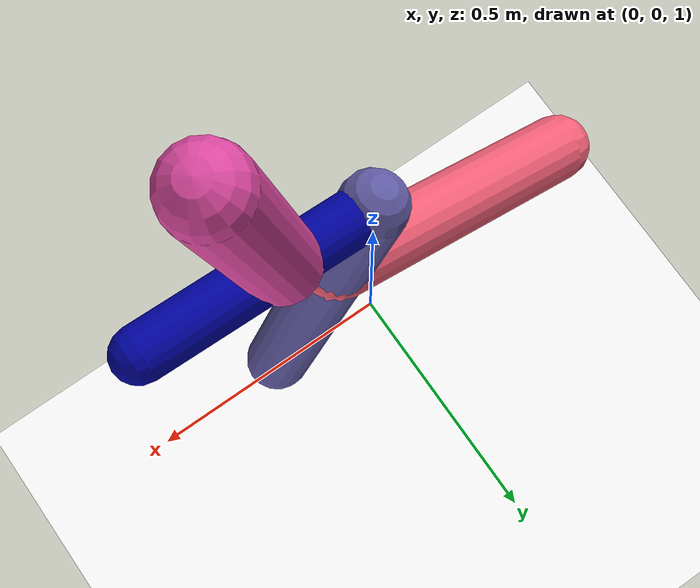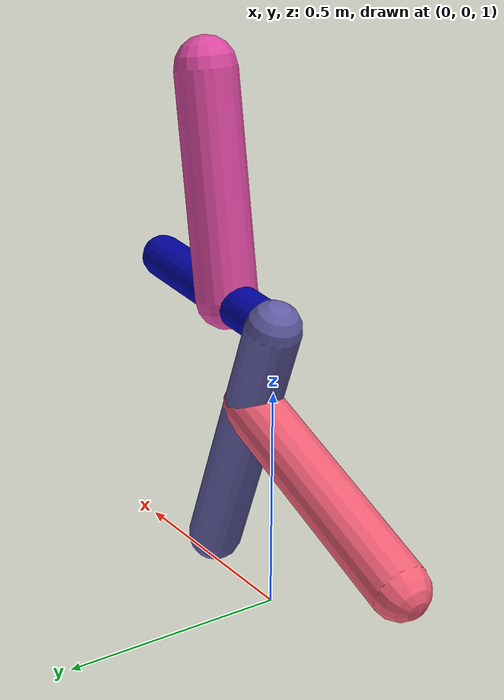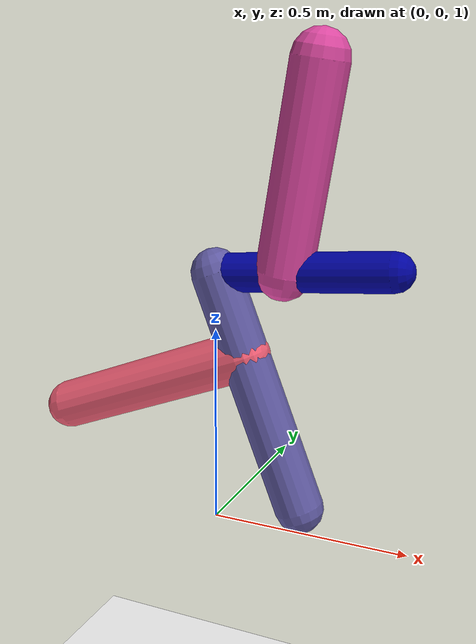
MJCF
<mujoco model="morphology">
    <option timestep="0.01" />
    <custom>
        <!-- brax custom params -->
        <numeric data="1000" name="constraint_limit_stiffness" />
        <numeric data="4000" name="constraint_stiffness" />
        <numeric data="10" name="constraint_ang_damping" />
        <numeric data="20" name="constraint_vel_damping" />
        <numeric data="0.5" name="joint_scale_pos" />
        <numeric data="0.2" name="joint_scale_ang" />
        <numeric data="0.0" name="ang_damping" />
        <numeric data="1" name="spring_mass_scale" />
        <numeric data="1" name="spring_inertia_scale" />
        <numeric data="15" name="solver_maxls" />
    </custom>
    <default>
        <default class="/" />
        <default class="0/" />
        <default class="0/1/" />
        <default class="0/2/" />
        <default class="0/2/3/" />
        <default class="0/2/4/" />
        <default class="0/2/4/5/" />
        <default class="0/2/4/5/6/" />
        <default class="0/2/4/5/7/" />
        <default class="0/2/4/5/7/8/" />
        <default class="0/2/4/5/7/8/9/" />
        <default class="0/2/4/5/7/8/9/10/" />
    </default>
    <asset>
        <texture name="texplane" type="2d" builtin="checker"
            rgb1="0.10000000000000001 0.20000000000000001 0.29999999999999999"
            rgb2="0.20000000000000001 0.29999999999999999 0.40000000000000002" width="300"
            height="300" />
        <material name="MatPlane" class="/" texture="texplane" texrepeat="20 20" specular="1.0"
            shininess="1.0" reflectance="0.5" />
    </asset>
    <worldbody>
        <light name="//unnamed_light_0" class="/" directional="true" pos="0 0 1.5" dir="0 0 -1.3"
            cutoff="100.0" exponent="1.0" diffuse="1 1 1"
            specular="0.10000000000000001 0.10000000000000001 0.10000000000000001" />
        <geom name="ground" class="/" type="plane" size="15 15 0.5" material="MatPlane"
            rgba="1 1 1 1" />
        <site name="body" class="/"
            size="9.9999999999999995e-07 9.9999999999999995e-07 9.9999999999999995e-07"
            pos="0 0 1.6446825361251831" />
        <body pos="0 0 1.6446825361251831" name="0/">
            <joint name="0/rootx/" class="/" type="slide" axis="1 0 0" stiffness="0.0"
                armature="0.0" damping="0.0" />
            <joint name="0/rootz/" class="/" type="slide" axis="0 0 1" stiffness="0.0"
                armature="0.0" damping="0.0" />
            <joint name="0/rooty/" class="/" type="hinge" axis="0 1 0" stiffness="0.0"
                armature="0.0" damping="0.0" />
            <geom name="0/geom" class="0/" type="capsule" contype="1" conaffinity="1" condim="3"
                size="0.048470334428519793"
                rgba="0.00033081932194189978 0.012455012886624872 0.63742753509390848 1"
                friction="0.59999999999999998 0.10000000000000001 0.10000000000000001"
                fromto="0 0 0 0.43986990955996008 0 0.037582513527956607" />
            <site name="0/end0" class="0/" size="0.0050000000000000001"
                pos="0.43986990955996008 0 0.037582513527956607" />
            <site name="0/attach1" class="0/"
                size="9.9999999999999995e-07 9.9999999999999995e-07 9.9999999999999995e-07"
                pos="0.17738829841916118 0 0.015156067692169723" />
            <body pos="0.17738829841916118 0 0.015156067692169723" name="0/1/">
                <joint name="0/1/joint/" class="0/" type="hinge" axis="0 1 0" limited="true"
                    stiffness="100.0" range="-59.967968634045079 59.967968634045079" armature="0.2"
                    damping="3.5" />
                <geom name="0/1/geom" class="0/1/" type="capsule" contype="1" conaffinity="1"
                    condim="3" size="0.06845958618526804"
                    rgba="0.87108043698540449 0.28535127249538017 0.63559308946676174 1"
                    friction="0.59999999999999998 0.10000000000000001 0.10000000000000001"
                    fromto="0 0 0 0.078363312647046768 0 0.48536182802937633" />
                <site name="0/1/end1" class="0/1/" size="0.0050000000000000001"
                    pos="0.078363312647046768 0 0.48536182802937633" />
            </body>
            <site name="0/attach2" class="0/"
                size="9.9999999999999995e-07 9.9999999999999995e-07 9.9999999999999995e-07"
                pos="0.049972686477538997 0 0.0042696695653705171" />
            <body name="0/2/">
                <geom name="0/2/geom" class="0/2/" type="capsule" contype="1" conaffinity="1"
                    condim="3" size="0.061582705385352127"
                    rgba="0.38364079381896388 0.36142282893249611 0.64819929378094321 1"
                    friction="0.59999999999999998 0.10000000000000001 0.10000000000000001"
                    fromto="0 0 0 0.22686783030327318 0 -0.57716451326855656" />
                <site name="0/2/end2" class="0/2/" size="0.0050000000000000001"
                    pos="0.22686783030327318 0 -0.57716451326855656" />
                <site name="0/2/attach3" class="0/2/"
                    size="9.9999999999999995e-07 9.9999999999999995e-07 9.9999999999999995e-07"
                    pos="0.078730536243448446 0 -0.20029490990229112" />
                <body pos="0.078730536243448446 0 -0.20029490990229112" name="0/2/3/">
                    <joint name="0/2/3/joint/" class="0/2/" type="hinge" axis="0 1 0"
                        limited="false"
                        stiffness="100.0" range="-54.477055309290478 54.477055309290478"
                        armature="0.2" damping="3.5" />
                    <geom name="0/2/3/geom" class="0/2/3/" type="capsule" contype="1"
                        conaffinity="1" condim="3" size="0.063611005932166856"
                        rgba="0.95500026637347413 0.37561256668505105 0.46587947609537039 1"
                        friction="0.59999999999999998 0.10000000000000001 0.10000000000000001"
                        fromto="0 0 0 -0.51610147707469145 0 -0.20343566848311156" />
                    <site name="0/2/3/end3" class="0/2/3/" size="0.0050000000000000001"
                        pos="-0.51610147707469145 0 -0.20343566848311156" />
                </body>
            </body>
        </body>
    </worldbody>
    <actuator>
        <motor name="0/1/motor" class="0/1/" ctrllimited="true" ctrlrange="-1 1" gear="54"
            joint="0/1/joint/" />
        <motor name="0/2/3/motor" class="0/2/3/" ctrllimited="true" ctrlrange="-1 1" gear="64"
            joint="0/2/3/joint/" />
    </actuator>
    <sensor>
        <subtreelinvel name="velocity" body="0/" />
    </sensor>
</mujoco>
